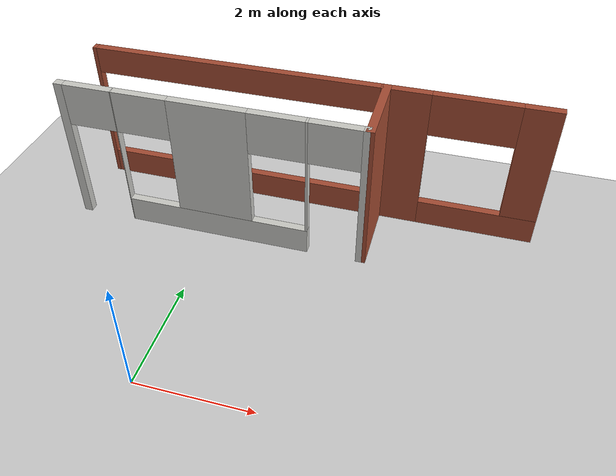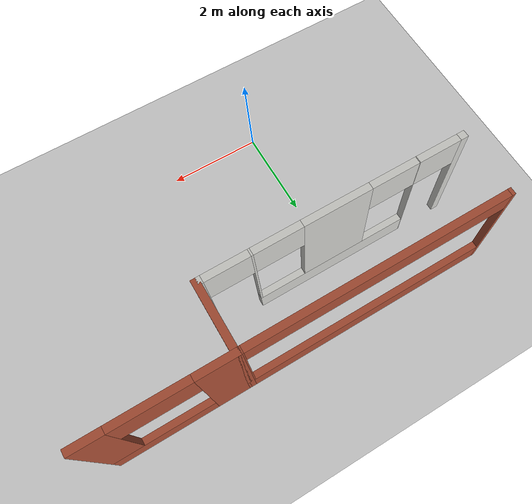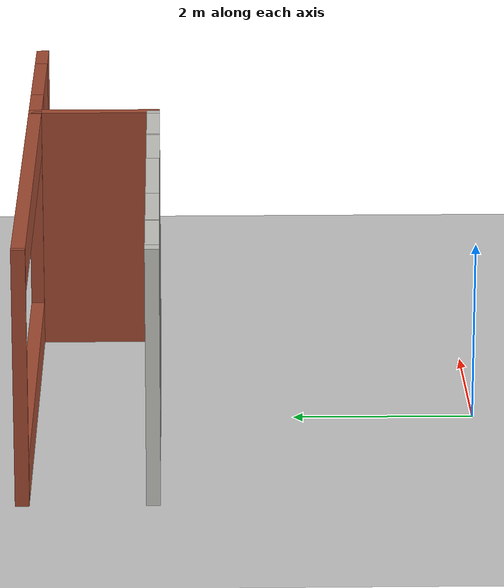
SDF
<sdf version="1.6">
 <world name="default">
  <model name="ground_plane">
   <static>1</static>
   <link name="link">
    <collision name="collision">
     <geometry><plane><normal>0 0 1</normal><size>100 100</size></plane></geometry>
     <surface>
      <contact><collide_bitmask>65535</collide_bitmask></contact>
      <friction><ode><mu>100</mu><mu2>50</mu2></ode></friction>
     </surface>
    </collision>
    <visual name="visual">
     <cast_shadows>0</cast_shadows>
     <geometry><plane><normal>0 0 1</normal><size>100 100</size></plane></geometry>
     <material>
      <script><uri>file://media/materials/scripts/gazebo.material</uri><name>Gazebo/Grey</name></script>
     </material>
    </visual>
   </link>
  </model>
  <model name="house">
   <link name="Wall_14">
    <pose>0.040444 3.553 0 0 -0 0</pose>
    <visual name="Wall_14_Visual_0">
     <pose>-2.6865 0 1.4 0 -0 0</pose>
     <geometry><box><size>0.159462 0.15 2.8</size></box></geometry>
     <material>
      <script><uri>file://media/materials/scripts/gazebo.material</uri><name>Gazebo/CeilingTiled</name></script>
      <ambient>1 1 1 1</ambient>
      <shader type="pixel"/>
     </material>
     <meta><layer>0</layer></meta>
    </visual>
    <visual name="Wall_14_Visual_1">
     <pose>-1.70025 0 1.4 0 -0 0</pose>
     <geometry><box><size>0.013045 0.15 2.8</size></box></geometry>
     <material>
      <script><uri>file://media/materials/scripts/gazebo.material</uri><name>Gazebo/CeilingTiled</name></script>
      <ambient>1 1 1 1</ambient>
      <shader type="pixel"/>
     </material>
     <meta><layer>0</layer></meta>
    </visual>
    <visual name="Wall_14_Visual_2">
     <pose>2.70996 0 1.4 0 -0 0</pose>
     <geometry><box><size>0.112546 0.15 2.8</size></box></geometry>
     <material>
      <script><uri>file://media/materials/scripts/gazebo.material</uri><name>Gazebo/CeilingTiled</name></script>
      <ambient>1 1 1 1</ambient>
      <shader type="pixel"/>
     </material>
     <meta><layer>0</layer></meta>
    </visual>
    <visual name="Wall_14_Visual_6">
     <pose>0.010082 0 1.65 0 -0 0</pose>
     <geometry><box><size>1.40761 0.15 2.3</size></box></geometry>
     <material>
      <script><uri>file://media/materials/scripts/gazebo.material</uri><name>Gazebo/CeilingTiled</name></script>
      <ambient>1 1 1 1</ambient>
      <shader type="pixel"/>
     </material>
     <meta><layer>0</layer></meta>
    </visual>
    <visual name="Wall_14_Visual_4">
     <pose>0.029981 0 0.25 0 -0 0</pose>
     <geometry><box><size>3.44741 0.15 0.5</size></box></geometry>
     <material>
      <script><uri>file://media/materials/scripts/gazebo.material</uri><name>Gazebo/CeilingTiled</name></script>
      <ambient>1 1 1 1</ambient>
      <shader type="pixel"/>
     </material>
     <meta><layer>0</layer></meta>
    </visual>
    <visual name="Wall_14_Visual_7">
     <pose>1.73379 0 1.65 0 -0 0</pose>
     <geometry><box><size>0.039797 0.15 2.3</size></box></geometry>
     <material>
      <script><uri>file://media/materials/scripts/gazebo.material</uri><name>Gazebo/CeilingTiled</name></script>
      <ambient>1 1 1 1</ambient>
      <shader type="pixel"/>
     </material>
     <meta><layer>0</layer></meta>
    </visual>
    <visual name="Wall_14_Visual_9">
     <pose>-1.19372 0 2.4 0 -0 0</pose>
     <geometry><box><size>1 0.15 0.8</size></box></geometry>
     <material>
      <script><uri>file://media/materials/scripts/gazebo.material</uri><name>Gazebo/CeilingTiled</name></script>
      <ambient>1 1 1 1</ambient>
      <shader type="pixel"/>
     </material>
     <meta><layer>0</layer></meta>
    </visual>
    <visual name="Wall_14_Visual_10">
     <pose>-2.15677 0 2.4 0 -0 0</pose>
     <geometry><box><size>0.9 0.15 0.8</size></box></geometry>
     <material>
      <script><uri>file://media/materials/scripts/gazebo.material</uri><name>Gazebo/CeilingTiled</name></script>
      <ambient>1 1 1 1</ambient>
      <shader type="pixel"/>
     </material>
     <meta><layer>0</layer></meta>
    </visual>
    <visual name="Wall_14_Visual_11">
     <pose>1.21389 0 2.4 0 -0 0</pose>
     <geometry><box><size>1 0.15 0.8</size></box></geometry>
     <material>
      <script><uri>file://media/materials/scripts/gazebo.material</uri><name>Gazebo/CeilingTiled</name></script>
      <ambient>1 1 1 1</ambient>
      <shader type="pixel"/>
     </material>
     <meta><layer>0</layer></meta>
    </visual>
    <visual name="Wall_14_Visual_12">
     <pose>2.20369 0 2.4 0 -0 0</pose>
     <geometry><box><size>0.9 0.15 0.8</size></box></geometry>
     <material>
      <script><uri>file://media/materials/scripts/gazebo.material</uri><name>Gazebo/CeilingTiled</name></script>
      <ambient>1 1 1 1</ambient>
      <shader type="pixel"/>
     </material>
     <meta><layer>0</layer></meta>
    </visual>
    <collision name="Wall_14_Collision_0">
     <pose>-2.6865 0 1.4 0 -0 0</pose>
     <geometry><box><size>0.159462 0.15 2.8</size></box></geometry>
     <surface>
      <friction>
       <ode><mu>1</mu><mu2>1</mu2><fdir1>0 0 0</fdir1><slip1>0</slip1><slip2>0</slip2></ode>
       <torsional>
        <coefficient>1</coefficient>
        <patch_radius>0</patch_radius>
        <surface_radius>0</surface_radius>
        <use_patch_radius>1</use_patch_radius>
        <ode><slip>0</slip></ode>
       </torsional>
      </friction>
      <bounce><restitution_coefficient>0</restitution_coefficient><threshold>1e+06</threshold></bounce>
      <contact>
       <collide_without_contact>0</collide_without_contact>
       <collide_without_contact_bitmask>1</collide_without_contact_bitmask>
       <collide_bitmask>1</collide_bitmask>
       <ode>
        <soft_cfm>0</soft_cfm>
        <soft_erp>0.2</soft_erp>
        <kp>1e+13</kp>
        <kd>1</kd>
        <max_vel>0.01</max_vel>
        <min_depth>0</min_depth>
       </ode>
       <bullet>
        <split_impulse>1</split_impulse>
        <split_impulse_penetration_threshold>-0.01</split_impulse_penetration_threshold>
        <soft_cfm>0</soft_cfm>
        <soft_erp>0.2</soft_erp>
        <kp>1e+13</kp>
        <kd>1</kd>
       </bullet>
      </contact>
     </surface>
    </collision>
    <collision name="Wall_14_Collision_1">
     <pose>-1.70025 0 1.4 0 -0 0</pose>
     <geometry><box><size>0.013045 0.15 2.8</size></box></geometry>
     <surface>
      <friction>
       <ode><mu>1</mu><mu2>1</mu2><fdir1>0 0 0</fdir1><slip1>0</slip1><slip2>0</slip2></ode>
       <torsional>
        <coefficient>1</coefficient>
        <patch_radius>0</patch_radius>
        <surface_radius>0</surface_radius>
        <use_patch_radius>1</use_patch_radius>
        <ode><slip>0</slip></ode>
       </torsional>
      </friction>
      <bounce><restitution_coefficient>0</restitution_coefficient><threshold>1e+06</threshold></bounce>
      <contact>
       <collide_without_contact>0</collide_without_contact>
       <collide_without_contact_bitmask>1</collide_without_contact_bitmask>
       <collide_bitmask>1</collide_bitmask>
       <ode>
        <soft_cfm>0</soft_cfm>
        <soft_erp>0.2</soft_erp>
        <kp>1e+13</kp>
        <kd>1</kd>
        <max_vel>0.01</max_vel>
        <min_depth>0</min_depth>
       </ode>
       <bullet>
        <split_impulse>1</split_impulse>
        <split_impulse_penetration_threshold>-0.01</split_impulse_penetration_threshold>
        <soft_cfm>0</soft_cfm>
        <soft_erp>0.2</soft_erp>
        <kp>1e+13</kp>
        <kd>1</kd>
       </bullet>
      </contact>
     </surface>
    </collision>
    <collision name="Wall_14_Collision_2">
     <pose>2.70996 0 1.4 0 -0 0</pose>
     <geometry><box><size>0.112546 0.15 2.8</size></box></geometry>
     <surface>
      <friction>
       <ode><mu>1</mu><mu2>1</mu2><fdir1>0 0 0</fdir1><slip1>0</slip1><slip2>0</slip2></ode>
       <torsional>
        <coefficient>1</coefficient>
        <patch_radius>0</patch_radius>
        <surface_radius>0</surface_radius>
        <use_patch_radius>1</use_patch_radius>
        <ode><slip>0</slip></ode>
       </torsional>
      </friction>
      <bounce><restitution_coefficient>0</restitution_coefficient><threshold>1e+06</threshold></bounce>
      <contact>
       <collide_without_contact>0</collide_without_contact>
       <collide_without_contact_bitmask>1</collide_without_contact_bitmask>
       <collide_bitmask>1</collide_bitmask>
       <ode>
        <soft_cfm>0</soft_cfm>
        <soft_erp>0.2</soft_erp>
        <kp>1e+13</kp>
        <kd>1</kd>
        <max_vel>0.01</max_vel>
        <min_depth>0</min_depth>
       </ode>
       <bullet>
        <split_impulse>1</split_impulse>
        <split_impulse_penetration_threshold>-0.01</split_impulse_penetration_threshold>
        <soft_cfm>0</soft_cfm>
        <soft_erp>0.2</soft_erp>
        <kp>1e+13</kp>
        <kd>1</kd>
       </bullet>
      </contact>
     </surface>
    </collision>
    <collision name="Wall_14_Collision_4">
     <pose>0.029981 0 0.25 0 -0 0</pose>
     <geometry><box><size>3.44741 0.15 0.5</size></box></geometry>
     <surface>
      <friction>
       <ode><mu>1</mu><mu2>1</mu2><fdir1>0 0 0</fdir1><slip1>0</slip1><slip2>0</slip2></ode>
       <torsional>
        <coefficient>1</coefficient>
        <patch_radius>0</patch_radius>
        <surface_radius>0</surface_radius>
        <use_patch_radius>1</use_patch_radius>
        <ode><slip>0</slip></ode>
       </torsional>
      </friction>
      <bounce><restitution_coefficient>0</restitution_coefficient><threshold>1e+06</threshold></bounce>
      <contact>
       <collide_without_contact>0</collide_without_contact>
       <collide_without_contact_bitmask>1</collide_without_contact_bitmask>
       <collide_bitmask>1</collide_bitmask>
       <ode>
        <soft_cfm>0</soft_cfm>
        <soft_erp>0.2</soft_erp>
        <kp>1e+13</kp>
        <kd>1</kd>
        <max_vel>0.01</max_vel>
        <min_depth>0</min_depth>
       </ode>
       <bullet>
        <split_impulse>1</split_impulse>
        <split_impulse_penetration_threshold>-0.01</split_impulse_penetration_threshold>
        <soft_cfm>0</soft_cfm>
        <soft_erp>0.2</soft_erp>
        <kp>1e+13</kp>
        <kd>1</kd>
       </bullet>
      </contact>
     </surface>
    </collision>
    <collision name="Wall_14_Collision_6">
     <pose>0.010082 0 1.65 0 -0 0</pose>
     <geometry><box><size>1.40761 0.15 2.3</size></box></geometry>
     <surface>
      <friction>
       <ode><mu>1</mu><mu2>1</mu2><fdir1>0 0 0</fdir1><slip1>0</slip1><slip2>0</slip2></ode>
       <torsional>
        <coefficient>1</coefficient>
        <patch_radius>0</patch_radius>
        <surface_radius>0</surface_radius>
        <use_patch_radius>1</use_patch_radius>
        <ode><slip>0</slip></ode>
       </torsional>
      </friction>
      <bounce><restitution_coefficient>0</restitution_coefficient><threshold>1e+06</threshold></bounce>
      <contact>
       <collide_without_contact>0</collide_without_contact>
       <collide_without_contact_bitmask>1</collide_without_contact_bitmask>
       <collide_bitmask>1</collide_bitmask>
       <ode>
        <soft_cfm>0</soft_cfm>
        <soft_erp>0.2</soft_erp>
        <kp>1e+13</kp>
        <kd>1</kd>
        <max_vel>0.01</max_vel>
        <min_depth>0</min_depth>
       </ode>
       <bullet>
        <split_impulse>1</split_impulse>
        <split_impulse_penetration_threshold>-0.01</split_impulse_penetration_threshold>
        <soft_cfm>0</soft_cfm>
        <soft_erp>0.2</soft_erp>
        <kp>1e+13</kp>
        <kd>1</kd>
       </bullet>
      </contact>
     </surface>
    </collision>
    <collision name="Wall_14_Collision_7">
     <pose>1.73379 0 1.65 0 -0 0</pose>
     <geometry><box><size>0.039797 0.15 2.3</size></box></geometry>
     <surface>
      <friction>
       <ode><mu>1</mu><mu2>1</mu2><fdir1>0 0 0</fdir1><slip1>0</slip1><slip2>0</slip2></ode>
       <torsional>
        <coefficient>1</coefficient>
        <patch_radius>0</patch_radius>
        <surface_radius>0</surface_radius>
        <use_patch_radius>1</use_patch_radius>
        <ode><slip>0</slip></ode>
       </torsional>
      </friction>
      <bounce><restitution_coefficient>0</restitution_coefficient><threshold>1e+06</threshold></bounce>
      <contact>
       <collide_without_contact>0</collide_without_contact>
       <collide_without_contact_bitmask>1</collide_without_contact_bitmask>
       <collide_bitmask>1</collide_bitmask>
       <ode>
        <soft_cfm>0</soft_cfm>
        <soft_erp>0.2</soft_erp>
        <kp>1e+13</kp>
        <kd>1</kd>
        <max_vel>0.01</max_vel>
        <min_depth>0</min_depth>
       </ode>
       <bullet>
        <split_impulse>1</split_impulse>
        <split_impulse_penetration_threshold>-0.01</split_impulse_penetration_threshold>
        <soft_cfm>0</soft_cfm>
        <soft_erp>0.2</soft_erp>
        <kp>1e+13</kp>
        <kd>1</kd>
       </bullet>
      </contact>
     </surface>
    </collision>
    <collision name="Wall_14_Collision_9">
     <pose>-1.19372 0 2.4 0 -0 0</pose>
     <geometry><box><size>1 0.15 0.8</size></box></geometry>
     <surface>
      <friction>
       <ode><mu>1</mu><mu2>1</mu2><fdir1>0 0 0</fdir1><slip1>0</slip1><slip2>0</slip2></ode>
       <torsional>
        <coefficient>1</coefficient>
        <patch_radius>0</patch_radius>
        <surface_radius>0</surface_radius>
        <use_patch_radius>1</use_patch_radius>
        <ode><slip>0</slip></ode>
       </torsional>
      </friction>
      <bounce><restitution_coefficient>0</restitution_coefficient><threshold>1e+06</threshold></bounce>
      <contact>
       <collide_without_contact>0</collide_without_contact>
       <collide_without_contact_bitmask>1</collide_without_contact_bitmask>
       <collide_bitmask>1</collide_bitmask>
       <ode>
        <soft_cfm>0</soft_cfm>
        <soft_erp>0.2</soft_erp>
        <kp>1e+13</kp>
        <kd>1</kd>
        <max_vel>0.01</max_vel>
        <min_depth>0</min_depth>
       </ode>
       <bullet>
        <split_impulse>1</split_impulse>
        <split_impulse_penetration_threshold>-0.01</split_impulse_penetration_threshold>
        <soft_cfm>0</soft_cfm>
        <soft_erp>0.2</soft_erp>
        <kp>1e+13</kp>
        <kd>1</kd>
       </bullet>
      </contact>
     </surface>
    </collision>
    <collision name="Wall_14_Collision_10">
     <pose>-2.15677 0 2.4 0 -0 0</pose>
     <geometry><box><size>0.9 0.15 0.8</size></box></geometry>
     <surface>
      <friction>
       <ode><mu>1</mu><mu2>1</mu2><fdir1>0 0 0</fdir1><slip1>0</slip1><slip2>0</slip2></ode>
       <torsional>
        <coefficient>1</coefficient>
        <patch_radius>0</patch_radius>
        <surface_radius>0</surface_radius>
        <use_patch_radius>1</use_patch_radius>
        <ode><slip>0</slip></ode>
       </torsional>
      </friction>
      <bounce><restitution_coefficient>0</restitution_coefficient><threshold>1e+06</threshold></bounce>
      <contact>
       <collide_without_contact>0</collide_without_contact>
       <collide_without_contact_bitmask>1</collide_without_contact_bitmask>
       <collide_bitmask>1</collide_bitmask>
       <ode>
        <soft_cfm>0</soft_cfm>
        <soft_erp>0.2</soft_erp>
        <kp>1e+13</kp>
        <kd>1</kd>
        <max_vel>0.01</max_vel>
        <min_depth>0</min_depth>
       </ode>
       <bullet>
        <split_impulse>1</split_impulse>
        <split_impulse_penetration_threshold>-0.01</split_impulse_penetration_threshold>
        <soft_cfm>0</soft_cfm>
        <soft_erp>0.2</soft_erp>
        <kp>1e+13</kp>
        <kd>1</kd>
       </bullet>
      </contact>
     </surface>
    </collision>
    <collision name="Wall_14_Collision_11">
     <pose>1.21389 0 2.4 0 -0 0</pose>
     <geometry><box><size>1 0.15 0.8</size></box></geometry>
     <surface>
      <friction>
       <ode><mu>1</mu><mu2>1</mu2><fdir1>0 0 0</fdir1><slip1>0</slip1><slip2>0</slip2></ode>
       <torsional>
        <coefficient>1</coefficient>
        <patch_radius>0</patch_radius>
        <surface_radius>0</surface_radius>
        <use_patch_radius>1</use_patch_radius>
        <ode><slip>0</slip></ode>
       </torsional>
      </friction>
      <bounce><restitution_coefficient>0</restitution_coefficient><threshold>1e+06</threshold></bounce>
      <contact>
       <collide_without_contact>0</collide_without_contact>
       <collide_without_contact_bitmask>1</collide_without_contact_bitmask>
       <collide_bitmask>1</collide_bitmask>
       <ode>
        <soft_cfm>0</soft_cfm>
        <soft_erp>0.2</soft_erp>
        <kp>1e+13</kp>
        <kd>1</kd>
        <max_vel>0.01</max_vel>
        <min_depth>0</min_depth>
       </ode>
       <bullet>
        <split_impulse>1</split_impulse>
        <split_impulse_penetration_threshold>-0.01</split_impulse_penetration_threshold>
        <soft_cfm>0</soft_cfm>
        <soft_erp>0.2</soft_erp>
        <kp>1e+13</kp>
        <kd>1</kd>
       </bullet>
      </contact>
     </surface>
    </collision>
    <collision name="Wall_14_Collision_12">
     <pose>2.20369 0 2.4 0 -0 0</pose>
     <geometry><box><size>0.9 0.15 0.8</size></box></geometry>
     <surface>
      <friction>
       <ode><mu>1</mu><mu2>1</mu2><fdir1>0 0 0</fdir1><slip1>0</slip1><slip2>0</slip2></ode>
       <torsional>
        <coefficient>1</coefficient>
        <patch_radius>0</patch_radius>
        <surface_radius>0</surface_radius>
        <use_patch_radius>1</use_patch_radius>
        <ode><slip>0</slip></ode>
       </torsional>
      </friction>
      <bounce><restitution_coefficient>0</restitution_coefficient><threshold>1e+06</threshold></bounce>
      <contact>
       <collide_without_contact>0</collide_without_contact>
       <collide_without_contact_bitmask>1</collide_without_contact_bitmask>
       <collide_bitmask>1</collide_bitmask>
       <ode>
        <soft_cfm>0</soft_cfm>
        <soft_erp>0.2</soft_erp>
        <kp>1e+13</kp>
        <kd>1</kd>
        <max_vel>0.01</max_vel>
        <min_depth>0</min_depth>
       </ode>
       <bullet>
        <split_impulse>1</split_impulse>
        <split_impulse_penetration_threshold>-0.01</split_impulse_penetration_threshold>
        <soft_cfm>0</soft_cfm>
        <soft_erp>0.2</soft_erp>
        <kp>1e+13</kp>
        <kd>1</kd>
       </bullet>
      </contact>
     </surface>
    </collision>
   </link>
   <link name="Wall_3">
    <pose>0.074445 4.925 0 0 -0 0</pose>
    <visual name="Wall_3_Visual_0">
     <pose>-2.76234 0 1.4 0 -0 0</pose>
     <geometry><box><size>0.07533 0.15 2.8</size></box></geometry>
     <material>
      <script><uri>file://media/materials/scripts/gazebo.material</uri><name>Gazebo/Bricks</name></script>
      <ambient>1 1 1 1</ambient>
      <shader type="pixel"/>
     </material>
     <meta><layer>0</layer></meta>
    </visual>
    <visual name="Wall_3_Visual_2">
     <pose>2.71166 0 1.65 0 -0 0</pose>
     <geometry><box><size>0.17667 0.15 2.3</size></box></geometry>
     <material>
      <script><uri>file://media/materials/scripts/gazebo.material</uri><name>Gazebo/Bricks</name></script>
      <ambient>1 1 1 1</ambient>
      <shader type="pixel"/>
     </material>
     <meta><layer>0</layer></meta>
    </visual>
    <visual name="Wall_3_Visual_1">
     <pose>0.037665 0 0.25 0 -0 0</pose>
     <geometry><box><size>5.52467 0.15 0.5</size></box></geometry>
     <material>
      <script><uri>file://media/materials/scripts/gazebo.material</uri><name>Gazebo/Bricks</name></script>
      <ambient>1 1 1 1</ambient>
      <shader type="pixel"/>
     </material>
     <meta><layer>0</layer></meta>
    </visual>
    <visual name="Wall_3_Visual_3">
     <pose>-0.05067 0 2.55 0 -0 0</pose>
     <geometry><box><size>5.348 0.15 0.5</size></box></geometry>
     <material>
      <script><uri>file://media/materials/scripts/gazebo.material</uri><name>Gazebo/Bricks</name></script>
      <ambient>1 1 1 1</ambient>
      <shader type="pixel"/>
     </material>
     <meta><layer>0</layer></meta>
    </visual>
    <collision name="Wall_3_Collision_0">
     <pose>-2.76234 0 1.4 0 -0 0</pose>
     <geometry><box><size>0.07533 0.15 2.8</size></box></geometry>
     <surface>
      <friction>
       <ode><mu>1</mu><mu2>1</mu2><fdir1>0 0 0</fdir1><slip1>0</slip1><slip2>0</slip2></ode>
       <torsional>
        <coefficient>1</coefficient>
        <patch_radius>0</patch_radius>
        <surface_radius>0</surface_radius>
        <use_patch_radius>1</use_patch_radius>
        <ode><slip>0</slip></ode>
       </torsional>
      </friction>
      <bounce><restitution_coefficient>0</restitution_coefficient><threshold>1e+06</threshold></bounce>
      <contact>
       <collide_without_contact>0</collide_without_contact>
       <collide_without_contact_bitmask>1</collide_without_contact_bitmask>
       <collide_bitmask>1</collide_bitmask>
       <ode>
        <soft_cfm>0</soft_cfm>
        <soft_erp>0.2</soft_erp>
        <kp>1e+13</kp>
        <kd>1</kd>
        <max_vel>0.01</max_vel>
        <min_depth>0</min_depth>
       </ode>
       <bullet>
        <split_impulse>1</split_impulse>
        <split_impulse_penetration_threshold>-0.01</split_impulse_penetration_threshold>
        <soft_cfm>0</soft_cfm>
        <soft_erp>0.2</soft_erp>
        <kp>1e+13</kp>
        <kd>1</kd>
       </bullet>
      </contact>
     </surface>
    </collision>
    <collision name="Wall_3_Collision_1">
     <pose>0.037665 0 0.25 0 -0 0</pose>
     <geometry><box><size>5.52467 0.15 0.5</size></box></geometry>
     <surface>
      <friction>
       <ode><mu>1</mu><mu2>1</mu2><fdir1>0 0 0</fdir1><slip1>0</slip1><slip2>0</slip2></ode>
       <torsional>
        <coefficient>1</coefficient>
        <patch_radius>0</patch_radius>
        <surface_radius>0</surface_radius>
        <use_patch_radius>1</use_patch_radius>
        <ode><slip>0</slip></ode>
       </torsional>
      </friction>
      <bounce><restitution_coefficient>0</restitution_coefficient><threshold>1e+06</threshold></bounce>
      <contact>
       <collide_without_contact>0</collide_without_contact>
       <collide_without_contact_bitmask>1</collide_without_contact_bitmask>
       <collide_bitmask>1</collide_bitmask>
       <ode>
        <soft_cfm>0</soft_cfm>
        <soft_erp>0.2</soft_erp>
        <kp>1e+13</kp>
        <kd>1</kd>
        <max_vel>0.01</max_vel>
        <min_depth>0</min_depth>
       </ode>
       <bullet>
        <split_impulse>1</split_impulse>
        <split_impulse_penetration_threshold>-0.01</split_impulse_penetration_threshold>
        <soft_cfm>0</soft_cfm>
        <soft_erp>0.2</soft_erp>
        <kp>1e+13</kp>
        <kd>1</kd>
       </bullet>
      </contact>
     </surface>
    </collision>
    <collision name="Wall_3_Collision_2">
     <pose>2.71166 0 1.65 0 -0 0</pose>
     <geometry><box><size>0.17667 0.15 2.3</size></box></geometry>
     <surface>
      <friction>
       <ode><mu>1</mu><mu2>1</mu2><fdir1>0 0 0</fdir1><slip1>0</slip1><slip2>0</slip2></ode>
       <torsional>
        <coefficient>1</coefficient>
        <patch_radius>0</patch_radius>
        <surface_radius>0</surface_radius>
        <use_patch_radius>1</use_patch_radius>
        <ode><slip>0</slip></ode>
       </torsional>
      </friction>
      <bounce><restitution_coefficient>0</restitution_coefficient><threshold>1e+06</threshold></bounce>
      <contact>
       <collide_without_contact>0</collide_without_contact>
       <collide_without_contact_bitmask>1</collide_without_contact_bitmask>
       <collide_bitmask>1</collide_bitmask>
       <ode>
        <soft_cfm>0</soft_cfm>
        <soft_erp>0.2</soft_erp>
        <kp>1e+13</kp>
        <kd>1</kd>
        <max_vel>0.01</max_vel>
        <min_depth>0</min_depth>
       </ode>
       <bullet>
        <split_impulse>1</split_impulse>
        <split_impulse_penetration_threshold>-0.01</split_impulse_penetration_threshold>
        <soft_cfm>0</soft_cfm>
        <soft_erp>0.2</soft_erp>
        <kp>1e+13</kp>
        <kd>1</kd>
       </bullet>
      </contact>
     </surface>
    </collision>
    <collision name="Wall_3_Collision_3">
     <pose>-0.05067 0 2.55 0 -0 0</pose>
     <geometry><box><size>5.348 0.15 0.5</size></box></geometry>
     <surface>
      <friction>
       <ode><mu>1</mu><mu2>1</mu2><fdir1>0 0 0</fdir1><slip1>0</slip1><slip2>0</slip2></ode>
       <torsional>
        <coefficient>1</coefficient>
        <patch_radius>0</patch_radius>
        <surface_radius>0</surface_radius>
        <use_patch_radius>1</use_patch_radius>
        <ode><slip>0</slip></ode>
       </torsional>
      </friction>
      <bounce><restitution_coefficient>0</restitution_coefficient><threshold>1e+06</threshold></bounce>
      <contact>
       <collide_without_contact>0</collide_without_contact>
       <collide_without_contact_bitmask>1</collide_without_contact_bitmask>
       <collide_bitmask>1</collide_bitmask>
       <ode>
        <soft_cfm>0</soft_cfm>
        <soft_erp>0.2</soft_erp>
        <kp>1e+13</kp>
        <kd>1</kd>
        <max_vel>0.01</max_vel>
        <min_depth>0</min_depth>
       </ode>
       <bullet>
        <split_impulse>1</split_impulse>
        <split_impulse_penetration_threshold>-0.01</split_impulse_penetration_threshold>
        <soft_cfm>0</soft_cfm>
        <soft_erp>0.2</soft_erp>
        <kp>1e+13</kp>
        <kd>1</kd>
       </bullet>
      </contact>
     </surface>
    </collision>
   </link>
   <link name="Wall_36">
    <pose>2.79944 4.2395 0 0 0 -1.5708</pose>
    <visual name="Wall_36_Visual">
     <pose>0 0 1.4 0 -0 0</pose>
     <geometry><box><size>1.521 0.15 2.8</size></box></geometry>
     <material>
      <script><uri>file://media/materials/scripts/gazebo.material</uri><name>Gazebo/Bricks</name></script>
      <ambient>1 1 1 1</ambient>
      <shader type="pixel"/>
     </material>
     <meta><layer>0</layer></meta>
    </visual>
    <collision name="Wall_36_Collision">
     <pose>0 0 1.4 0 -0 0</pose>
     <geometry><box><size>1.521 0.15 2.8</size></box></geometry>
     <surface>
      <friction>
       <ode><mu>1</mu><mu2>1</mu2><fdir1>0 0 0</fdir1><slip1>0</slip1><slip2>0</slip2></ode>
       <torsional>
        <coefficient>1</coefficient>
        <patch_radius>0</patch_radius>
        <surface_radius>0</surface_radius>
        <use_patch_radius>1</use_patch_radius>
        <ode><slip>0</slip></ode>
       </torsional>
      </friction>
      <bounce><restitution_coefficient>0</restitution_coefficient><threshold>1e+06</threshold></bounce>
      <contact>
       <collide_without_contact>0</collide_without_contact>
       <collide_without_contact_bitmask>1</collide_without_contact_bitmask>
       <collide_bitmask>1</collide_bitmask>
       <ode>
        <soft_cfm>0</soft_cfm>
        <soft_erp>0.2</soft_erp>
        <kp>1e+13</kp>
        <kd>1</kd>
        <max_vel>0.01</max_vel>
        <min_depth>0</min_depth>
       </ode>
       <bullet>
        <split_impulse>1</split_impulse>
        <split_impulse_penetration_threshold>-0.01</split_impulse_penetration_threshold>
        <soft_cfm>0</soft_cfm>
        <soft_erp>0.2</soft_erp>
        <kp>1e+13</kp>
        <kd>1</kd>
       </bullet>
      </contact>
     </surface>
    </collision>
   </link>
   <link name="Wall_4">
    <pose>4.22444 4.925 0 0 -0 0</pose>
    <visual name="Wall_4_Visual_0">
     <pose>-1.07575 0 1.4 0 -0 0</pose>
     <geometry><box><size>0.848504 0.15 2.8</size></box></geometry>
     <material>
      <script><uri>file://media/materials/scripts/gazebo.material</uri><name>Gazebo/Bricks</name></script>
      <ambient>1 1 1 1</ambient>
      <shader type="pixel"/>
     </material>
     <meta><layer>0</layer></meta>
    </visual>
    <visual name="Wall_4_Visual_1">
     <pose>0.424252 0 0.25 0 -0 0</pose>
     <geometry><box><size>2.1515 0.15 0.5</size></box></geometry>
     <material>
      <script><uri>file://media/materials/scripts/gazebo.material</uri><name>Gazebo/Bricks</name></script>
      <ambient>1 1 1 1</ambient>
      <shader type="pixel"/>
     </material>
     <meta><layer>0</layer></meta>
    </visual>
    <visual name="Wall_4_Visual_2">
     <pose>1.17425 0 1.65 0 -0 0</pose>
     <geometry><box><size>0.651496 0.15 2.3</size></box></geometry>
     <material>
      <script><uri>file://media/materials/scripts/gazebo.material</uri><name>Gazebo/Bricks</name></script>
      <ambient>1 1 1 1</ambient>
      <shader type="pixel"/>
     </material>
     <meta><layer>0</layer></meta>
    </visual>
    <visual name="Wall_4_Visual_3">
     <pose>0.098504 0 2.4 0 -0 0</pose>
     <geometry><box><size>1.5 0.15 0.8</size></box></geometry>
     <material>
      <script><uri>file://media/materials/scripts/gazebo.material</uri><name>Gazebo/Bricks</name></script>
      <ambient>1 1 1 1</ambient>
      <shader type="pixel"/>
     </material>
     <meta><layer>0</layer></meta>
    </visual>
    <collision name="Wall_4_Collision_0">
     <pose>-1.07575 0 1.4 0 -0 0</pose>
     <geometry><box><size>0.848504 0.15 2.8</size></box></geometry>
     <surface>
      <friction>
       <ode><mu>1</mu><mu2>1</mu2><fdir1>0 0 0</fdir1><slip1>0</slip1><slip2>0</slip2></ode>
       <torsional>
        <coefficient>1</coefficient>
        <patch_radius>0</patch_radius>
        <surface_radius>0</surface_radius>
        <use_patch_radius>1</use_patch_radius>
        <ode><slip>0</slip></ode>
       </torsional>
      </friction>
      <bounce><restitution_coefficient>0</restitution_coefficient><threshold>1e+06</threshold></bounce>
      <contact>
       <collide_without_contact>0</collide_without_contact>
       <collide_without_contact_bitmask>1</collide_without_contact_bitmask>
       <collide_bitmask>1</collide_bitmask>
       <ode>
        <soft_cfm>0</soft_cfm>
        <soft_erp>0.2</soft_erp>
        <kp>1e+13</kp>
        <kd>1</kd>
        <max_vel>0.01</max_vel>
        <min_depth>0</min_depth>
       </ode>
       <bullet>
        <split_impulse>1</split_impulse>
        <split_impulse_penetration_threshold>-0.01</split_impulse_penetration_threshold>
        <soft_cfm>0</soft_cfm>
        <soft_erp>0.2</soft_erp>
        <kp>1e+13</kp>
        <kd>1</kd>
       </bullet>
      </contact>
     </surface>
    </collision>
    <collision name="Wall_4_Collision_1">
     <pose>0.424252 0 0.25 0 -0 0</pose>
     <geometry><box><size>2.1515 0.15 0.5</size></box></geometry>
     <surface>
      <friction>
       <ode><mu>1</mu><mu2>1</mu2><fdir1>0 0 0</fdir1><slip1>0</slip1><slip2>0</slip2></ode>
       <torsional>
        <coefficient>1</coefficient>
        <patch_radius>0</patch_radius>
        <surface_radius>0</surface_radius>
        <use_patch_radius>1</use_patch_radius>
        <ode><slip>0</slip></ode>
       </torsional>
      </friction>
      <bounce><restitution_coefficient>0</restitution_coefficient><threshold>1e+06</threshold></bounce>
      <contact>
       <collide_without_contact>0</collide_without_contact>
       <collide_without_contact_bitmask>1</collide_without_contact_bitmask>
       <collide_bitmask>1</collide_bitmask>
       <ode>
        <soft_cfm>0</soft_cfm>
        <soft_erp>0.2</soft_erp>
        <kp>1e+13</kp>
        <kd>1</kd>
        <max_vel>0.01</max_vel>
        <min_depth>0</min_depth>
       </ode>
       <bullet>
        <split_impulse>1</split_impulse>
        <split_impulse_penetration_threshold>-0.01</split_impulse_penetration_threshold>
        <soft_cfm>0</soft_cfm>
        <soft_erp>0.2</soft_erp>
        <kp>1e+13</kp>
        <kd>1</kd>
       </bullet>
      </contact>
     </surface>
    </collision>
    <collision name="Wall_4_Collision_2">
     <pose>1.17425 0 1.65 0 -0 0</pose>
     <geometry><box><size>0.651496 0.15 2.3</size></box></geometry>
     <surface>
      <friction>
       <ode><mu>1</mu><mu2>1</mu2><fdir1>0 0 0</fdir1><slip1>0</slip1><slip2>0</slip2></ode>
       <torsional>
        <coefficient>1</coefficient>
        <patch_radius>0</patch_radius>
        <surface_radius>0</surface_radius>
        <use_patch_radius>1</use_patch_radius>
        <ode><slip>0</slip></ode>
       </torsional>
      </friction>
      <bounce><restitution_coefficient>0</restitution_coefficient><threshold>1e+06</threshold></bounce>
      <contact>
       <collide_without_contact>0</collide_without_contact>
       <collide_without_contact_bitmask>1</collide_without_contact_bitmask>
       <collide_bitmask>1</collide_bitmask>
       <ode>
        <soft_cfm>0</soft_cfm>
        <soft_erp>0.2</soft_erp>
        <kp>1e+13</kp>
        <kd>1</kd>
        <max_vel>0.01</max_vel>
        <min_depth>0</min_depth>
       </ode>
       <bullet>
        <split_impulse>1</split_impulse>
        <split_impulse_penetration_threshold>-0.01</split_impulse_penetration_threshold>
        <soft_cfm>0</soft_cfm>
        <soft_erp>0.2</soft_erp>
        <kp>1e+13</kp>
        <kd>1</kd>
       </bullet>
      </contact>
     </surface>
    </collision>
    <collision name="Wall_4_Collision_3">
     <pose>0.098504 0 2.4 0 -0 0</pose>
     <geometry><box><size>1.5 0.15 0.8</size></box></geometry>
     <surface>
      <friction>
       <ode><mu>1</mu><mu2>1</mu2><fdir1>0 0 0</fdir1><slip1>0</slip1><slip2>0</slip2></ode>
       <torsional>
        <coefficient>1</coefficient>
        <patch_radius>0</patch_radius>
        <surface_radius>0</surface_radius>
        <use_patch_radius>1</use_patch_radius>
        <ode><slip>0</slip></ode>
       </torsional>
      </friction>
      <bounce><restitution_coefficient>0</restitution_coefficient><threshold>1e+06</threshold></bounce>
      <contact>
       <collide_without_contact>0</collide_without_contact>
       <collide_without_contact_bitmask>1</collide_without_contact_bitmask>
       <collide_bitmask>1</collide_bitmask>
       <ode>
        <soft_cfm>0</soft_cfm>
        <soft_erp>0.2</soft_erp>
        <kp>1e+13</kp>
        <kd>1</kd>
        <max_vel>0.01</max_vel>
        <min_depth>0</min_depth>
       </ode>
       <bullet>
        <split_impulse>1</split_impulse>
        <split_impulse_penetration_threshold>-0.01</split_impulse_penetration_threshold>
        <soft_cfm>0</soft_cfm>
        <soft_erp>0.2</soft_erp>
        <kp>1e+13</kp>
        <kd>1</kd>
       </bullet>
      </contact>
     </surface>
    </collision>
   </link>
   <static>1</static>
  </model>
 </world>
</sdf>
